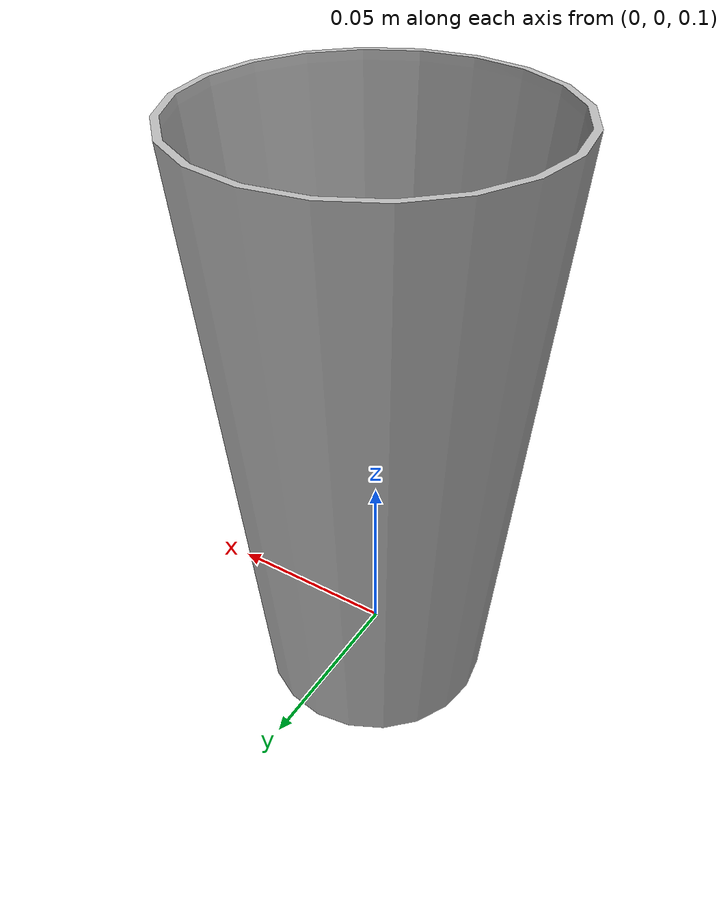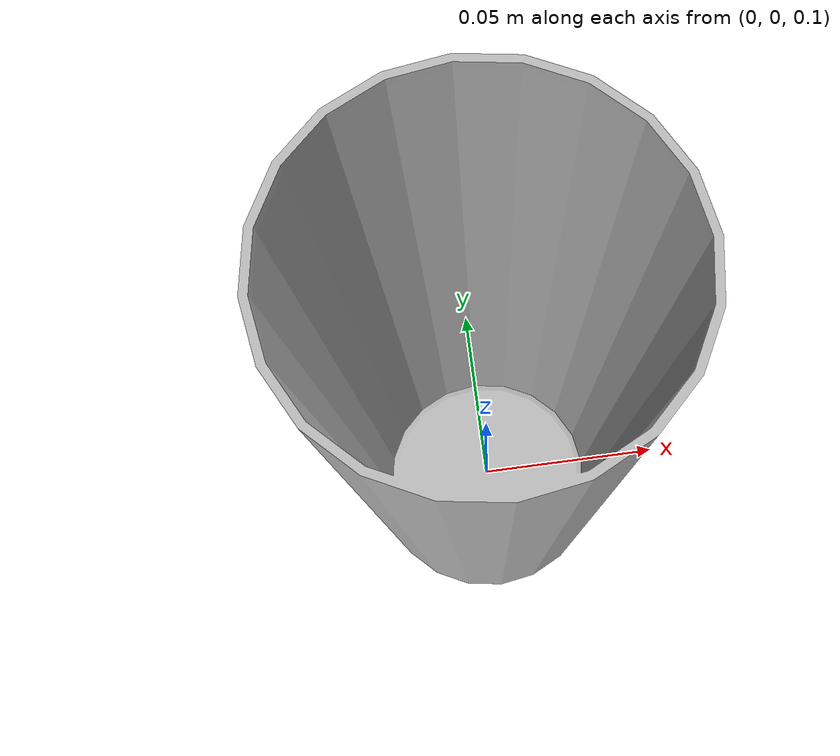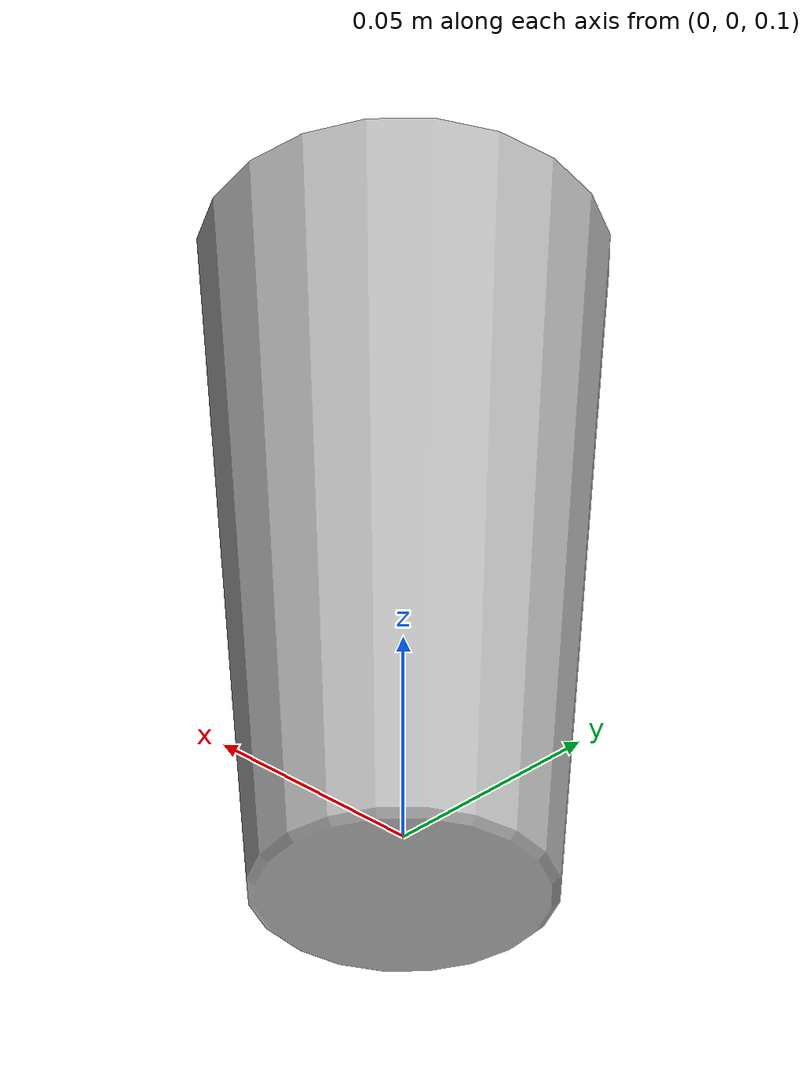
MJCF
<mujoco model="plastic_glass">
  <compiler angle="radian"/>

  <asset>
    <material name="plastic_glass_mat" rgba="0.72 0.72 0.72 1.0" specular="0.5" shininess="0.5"/>
    <mesh name="plastic_glass_mesh" file="plastic_glass_visual.obj"/>
  </asset>

  <worldbody>
    <body name="plastic_glass" pos="0 0 0.0855">
      <freejoint name="plastic_glass_joint"/>

      <!-- Collision geometry - cylinder (radius=0.048, height=0.171) -->
      <geom name="plastic_glass_collision"
            type="cylinder"
            size="0.048 0.0855"
            mass="0.08"
            friction="0.6 0.005 0.0001"
            contype="1"
            conaffinity="1"
            rgba="0 0 0 0"/>

      <!-- Visual mesh -->
      <geom name="plastic_glass_visual"
            type="mesh"
            mesh="plastic_glass_mesh"
            material="plastic_glass_mat"
            contype="0"
            conaffinity="0"/>
    </body>
  </worldbody>
</mujoco>
